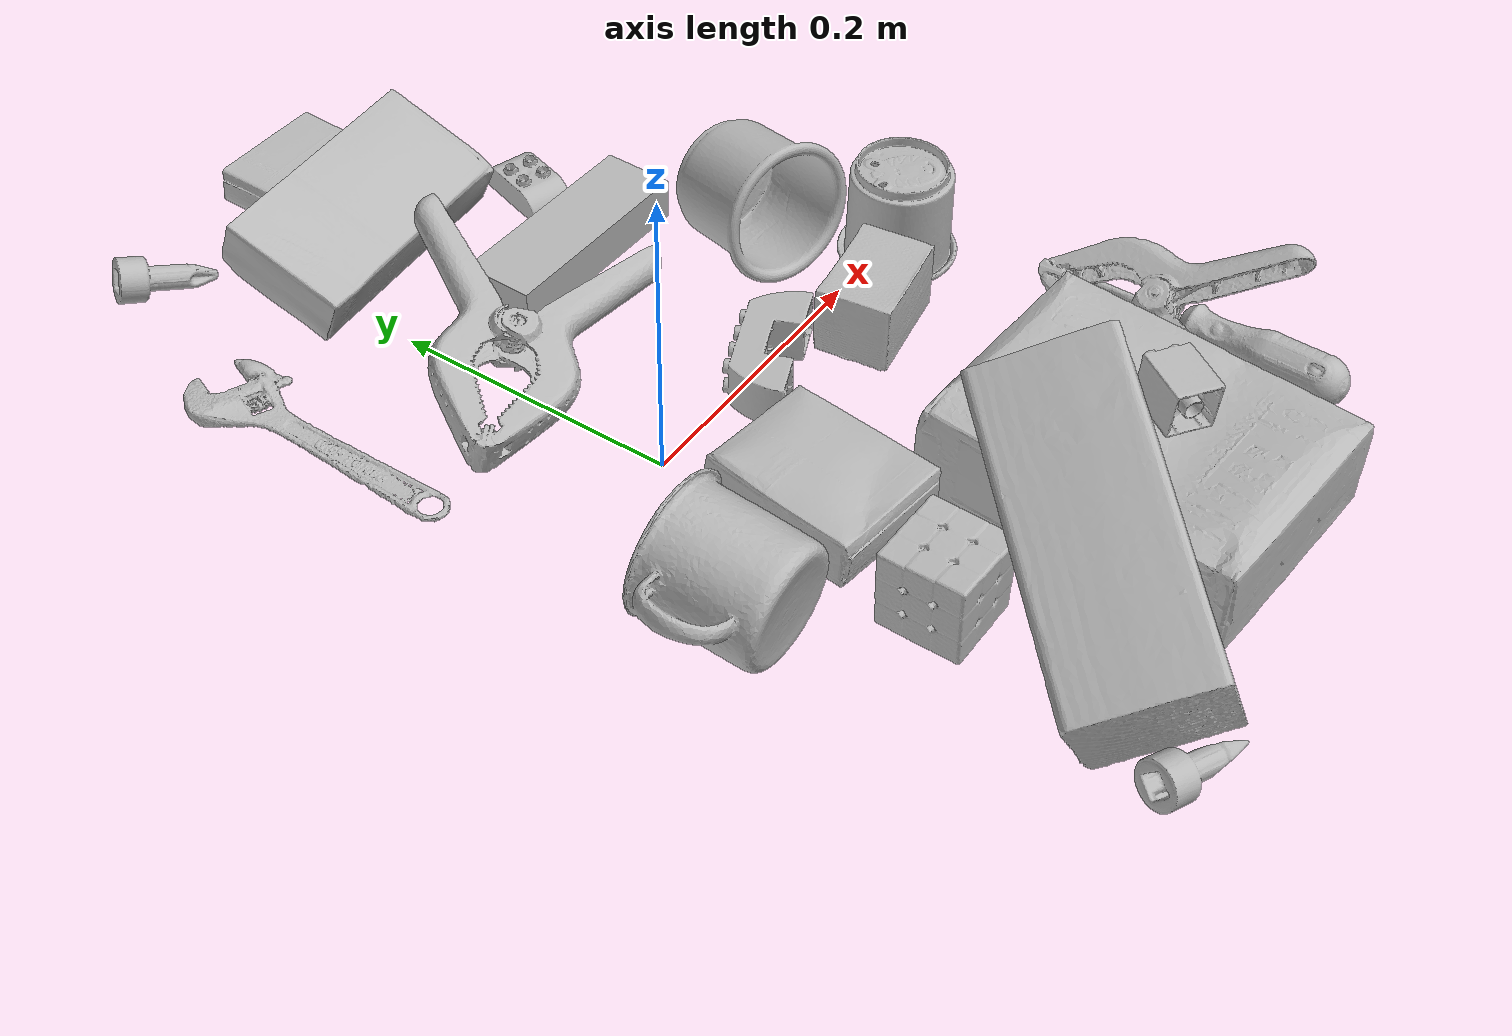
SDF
<sdf version="1.4">
  <world name="default">
    <light name="light1" type="point">
      <pose>0 0 1 0 0 0</pose>
      <diffuse>3 3 3 1</diffuse>
      <specular>3 3 3 1</specular>
    </light>
    <light name="light2" type="point">
      <pose>0 0.5 2 0 0 0</pose>
      <diffuse>1 1 1 1</diffuse>
      <specular>1 1 1 1</specular>
    </light>
    <light name="light3" type="point">
      <pose>0 0.5 2 0 0 0</pose>
      <diffuse>3 3 3 1</diffuse>
      <specular>3 3 3 1</specular>
    </light>
    <scene>
      <ambient>0.7 0.7 0.7</ambient>
    </scene>
    <model name="box21">
      <link name="link_box21">
        <collision name="default">
          <geometry>
            <mesh>
              <uri>model://cracker_box/collision_meshes/collision.obj</uri>
              <scale>1.0 1.0 1.0</scale>
            </mesh>
          </geometry>
          <surface>
            <friction>
              <ode>
                <mu>0.5</mu>
                <mu2>0.5</mu2>
              </ode>
            </friction>
          <contact>
        <ode>
            <max_vel>0</max_vel>
            <min_depth>0.0001</min_depth>
            <kp>1e8</kp>
        </ode>
    </contact></surface>
        </collision>
        <visual name="default">
          <geometry>
            <mesh>
              <uri>model://cracker_box/visual_meshes/visual.dae</uri>
              <scale>1.0 1.0 1.0</scale>
            </mesh>
          </geometry>
        </visual>
        <inertial>
          <mass>1.391977071762085</mass>
          <pose>0.0009464159375056624 0.0002543424488976598 -0.0017029533628374338 -0.000316207597302205 -0.011106489600460226 0.002546794768991959</pose>
          <inertia>
            <ixx>0.0035405685</ixx>
            <iyy>0.0058461735</iyy>
            <izz>0.008343027</izz>
            <ixy>0</ixy>
            <ixz>0</ixz>
            <iyz>0</iyz>
          </inertia>
        </inertial>
      </link>
      <pose>0.14034120738506317 -0.2436387836933136 0.0364818312227726 -0.011793521250132657 -0.007366216131034923 1.4858913787929289</pose>
    </model>
    <model name="box22">
      <link name="link_box22">
        <collision name="default">
          <geometry>
            <mesh>
              <uri>model://pudding_box/collision_meshes/collision.obj</uri>
              <scale>1.0 1.0 1.0</scale>
            </mesh>
          </geometry>
          <surface>
            <friction>
              <ode>
                <mu>0.5</mu>
                <mu2>0.5</mu2>
              </ode>
            </friction>
          <contact>
        <ode>
            <max_vel>0</max_vel>
            <min_depth>0.0001</min_depth>
            <kp>1e8</kp>
        </ode>
    </contact></surface>
        </collision>
        <visual name="default">
          <geometry>
            <mesh>
              <uri>model://pudding_box/visual_meshes/visual.dae</uri>
              <scale>1.0 1.0 1.0</scale>
            </mesh>
          </geometry>
        </visual>
        <inertial>
          <mass>0.30066633224487305</mass>
          <pose>0.0004894821904599667 0.0008067885646596551 -0.0005188827635720372 0.005213102250656644 -0.006603798267444238 0.020079828885202117</pose>
          <inertia>
            <ixx>0.0003398878</ixx>
            <iyy>0.00022867892</iyy>
            <izz>0.00050193316</izz>
            <ixy>0</ixy>
            <ixz>0</ixz>
            <iyz>0</iyz>
          </inertia>
        </inertial>
      </link>
      <pose>0.026828184723854065 -0.09631796926259995 0.018660496920347214 3.133983181108727 -0.026952226739148853 3.0120504779354387</pose>
    </model>
    <model name="box23">
      <link name="link_box23">
        <collision name="default">
          <geometry>
            <mesh>
              <uri>model://rubiks_cube/collision_meshes/collision.obj</uri>
              <scale>1.0 1.0 1.0</scale>
            </mesh>
          </geometry>
          <surface>
            <friction>
              <ode>
                <mu>0.5</mu>
                <mu2>0.5</mu2>
              </ode>
            </friction>
          <contact>
        <ode>
            <max_vel>0</max_vel>
            <min_depth>0.0001</min_depth>
            <kp>1e8</kp>
        </ode>
    </contact></surface>
        </collision>
        <visual name="default">
          <geometry>
            <mesh>
              <uri>model://rubiks_cube/visual_meshes/visual.dae</uri>
              <scale>1.0 1.0 1.0</scale>
            </mesh>
          </geometry>
        </visual>
        <inertial>
          <mass>0.26383036375045776</mass>
          <pose>2.6721041649580002e-05 5.256966323941015e-05 -7.264316082000732e-06 -0.054671492146459166 -0.0981403456898064 -0.03445706250673431</pose>
          <inertia>
            <ixx>0.000145784</ixx>
            <iyy>0.00014510413</iyy>
            <izz>0.00014699204</izz>
            <ixy>0</ixy>
            <ixz>0</ixz>
            <iyz>0</iyz>
          </inertia>
        </inertial>
      </link>
      <pose>-0.006485923659056425 -0.1986396759748459 0.029273271560668945 1.5698337380052259 -0.02165945288178244 -1.5951597471584493</pose>
    </model>
    <model name="cup1">
      <link name="link_cup1">
        <collision name="default">
          <geometry>
            <mesh>
              <uri>model://i_cups/collision_meshes/collision.obj</uri>
              <scale>1.0 1.0 1.0</scale>
            </mesh>
          </geometry>
          <surface>
            <friction>
              <ode>
                <mu>0.5</mu>
                <mu2>0.5</mu2>
              </ode>
            </friction>
          <contact>
        <ode>
            <max_vel>0</max_vel>
            <min_depth>0.0001</min_depth>
            <kp>1e8</kp>
        </ode>
    </contact></surface>
        </collision>
        <visual name="default">
          <geometry>
            <mesh>
              <uri>model://i_cups/visual_meshes/visual.dae</uri>
              <scale>1.0 1.0 1.0</scale>
            </mesh>
          </geometry>
        </visual>
        <inertial>
          <mass>0.07817669957876205</mass>
          <pose>0.00011240140884183347 0.00016797371790744364 -0.0008579030982218683 -0.02898336998566683 -0.039872909189422004 -0.34590568894983</pose>
          <inertia>
            <ixx>0.000108236774</ixx>
            <iyy>0.000109190434</iyy>
            <izz>0.00012097212</izz>
            <ixy>0</ixy>
            <ixz>0</ixz>
            <iyz>0</iyz>
          </inertia>
        </inertial>
      </link>
      <pose>0.2071106880903244 0.07262038439512253 0.04483126848936081 1.435703170376369 -0.3500620974660565 -0.26062857931460975</pose>
    </model>
    <model name="cup2">
      <link name="link_cup2">
        <collision name="default">
          <geometry>
            <mesh>
              <uri>model://f_cups/collision_meshes/collision.obj</uri>
              <scale>1.0 1.0 1.0</scale>
            </mesh>
          </geometry>
          <surface>
            <friction>
              <ode>
                <mu>0.5</mu>
                <mu2>0.5</mu2>
              </ode>
            </friction>
          <contact>
        <ode>
            <max_vel>0</max_vel>
            <min_depth>0.0001</min_depth>
            <kp>1e8</kp>
        </ode>
    </contact></surface>
        </collision>
        <visual name="default">
          <geometry>
            <mesh>
              <uri>model://f_cups/visual_meshes/visual.dae</uri>
              <scale>1.0 1.0 1.0</scale>
            </mesh>
          </geometry>
        </visual>
        <inertial>
          <mass>0.06179655343294144</mass>
          <pose>-0.003171469084918499 -0.0006240077782422304 -0.0036555363330990076 0.786228783809594 -0.26079147583364887 -0.18237327348602217</pose>
          <inertia>
            <ixx>5.8090412e-05</ixx>
            <iyy>6.0937502e-05</iyy>
            <izz>6.3437656e-05</izz>
            <ixy>0</ixy>
            <ixz>0</ixz>
            <iyz>0</iyz>
          </inertia>
        </inertial>
      </link>
      <pose>0.2583334743976593 -0.008993173018097878 0.036304011940956116 -3.141592626985685 1.634429031814616e-08 1.4340114884834383</pose>
    </model>
    <model name="box11">
      <link name="link_box11">
        <collision name="default">
          <geometry>
            <mesh>
              <uri>model://jenga/collision_meshes/collision.obj</uri>
              <scale>1.0 1.0 1.0</scale>
            </mesh>
          </geometry>
          <surface>
            <friction>
              <ode>
                <mu>0.5</mu>
                <mu2>0.5</mu2>
              </ode>
            </friction>
          <contact>
        <ode>
            <max_vel>0</max_vel>
            <min_depth>0.0001</min_depth>
            <kp>1e8</kp>
        </ode>
    </contact></surface>
        </collision>
        <visual name="default">
          <geometry>
            <mesh>
              <uri>model://jenga/visual_meshes/visual.dae</uri>
              <scale>1.0 1.0 1.0</scale>
            </mesh>
          </geometry>
        </visual>
        <inertial>
          <mass>0.2841220796108246</mass>
          <pose>-2.5028555228345795e-07 -0.00010250010382151231 -4.0923401684267446e-05 0.0 -7.34215461761844e-07 0.0</pose>
          <inertia>
            <ixx>7.8623474e-05</ixx>
            <iyy>0.00053275056</iyy>
            <izz>0.0005687565</izz>
            <ixy>0</ixy>
            <ixz>0</ixz>
            <iyz>0</iyz>
          </inertia>
        </inertial>
      </link>
      <pose>0.126708984375 0.16684876382350922 0.015000002458691597 7.706278061374901e-09 1.2173474346702982e-09 -0.025096376319169722</pose>
    </model>
    <model name="box12">
      <link name="link_box12">
        <collision name="default">
          <geometry>
            <mesh>
              <uri>model://wood_block/collision_meshes/collision.obj</uri>
              <scale>1.0 1.0 1.0</scale>
            </mesh>
          </geometry>
          <surface>
            <friction>
              <ode>
                <mu>0.5</mu>
                <mu2>0.5</mu2>
              </ode>
            </friction>
          <contact>
        <ode>
            <max_vel>0</max_vel>
            <min_depth>0.0001</min_depth>
            <kp>1e8</kp>
        </ode>
    </contact></surface>
        </collision>
        <visual name="default">
          <geometry>
            <mesh>
              <uri>model://wood_block/visual_meshes/visual.dae</uri>
              <scale>1.0 1.0 1.0</scale>
            </mesh>
          </geometry>
        </visual>
        <inertial>
          <mass>1.792885661125183</mass>
          <pose>-5.813315510749817e-06 -0.0005708095268346369 0.0002640858292579651 -0.0522099864925601 -0.005192695938411627 -0.006861379223067069</pose>
          <inertia>
            <ixx>0.0023991528</ixx>
            <iyy>0.007578924</iyy>
            <izz>0.007550574</izz>
            <ixy>0</ixy>
            <ixz>0</ixz>
            <iyz>0</iyz>
          </inertia>
        </inertial>
      </link>
      <pose>0.01169726625084877 -0.2789517939090729 0.08994641155004501 0.4044817224354778 0.36605166264968675 -2.3196509560805763</pose>
    </model>
    <model name="box13">
      <link name="link_box13">
        <collision name="default">
          <geometry>
            <mesh>
              <uri>model://sugar_box/collision_meshes/collision.obj</uri>
              <scale>1.0 1.0 1.0</scale>
            </mesh>
          </geometry>
          <surface>
            <friction>
              <ode>
                <mu>0.5</mu>
                <mu2>0.5</mu2>
              </ode>
            </friction>
          <contact>
        <ode>
            <max_vel>0</max_vel>
            <min_depth>0.0001</min_depth>
            <kp>1e8</kp>
        </ode>
    </contact></surface>
        </collision>
        <visual name="default">
          <geometry>
            <mesh>
              <uri>model://sugar_box/visual_meshes/visual.dae</uri>
              <scale>1.0 1.0 1.0</scale>
            </mesh>
          </geometry>
        </visual>
        <inertial>
          <mass>0.8825364708900452</mass>
          <pose>0.0010343727190047503 3.8491099985549226e-05 -0.00036364805418998003 -0.0004046260965456432 0.0010506635219437153 0.002615379021860657</pose>
          <inertia>
            <ixx>0.0007353271</ixx>
            <iyy>0.0023767278</iyy>
            <izz>0.002845227</izz>
            <ixy>0</ixy>
            <ixz>0</ixz>
            <iyz>0</iyz>
          </inertia>
        </inertial>
      </link>
      <pose>0.05195610597729683 0.28494030237197876 0.03397446125745773 -2.769975623248677 -0.007556204959760553 0.073483113335138</pose>
    </model>
    <model name="box14">
      <link name="link_box14">
        <collision name="default">
          <geometry>
            <mesh>
              <uri>model://gelatin_box/collision_meshes/collision.obj</uri>
              <scale>1.0 1.0 1.0</scale>
            </mesh>
          </geometry>
          <surface>
            <friction>
              <ode>
                <mu>0.5</mu>
                <mu2>0.5</mu2>
              </ode>
            </friction>
          <contact>
        <ode>
            <max_vel>0</max_vel>
            <min_depth>0.0001</min_depth>
            <kp>1e8</kp>
        </ode>
    </contact></surface>
        </collision>
        <visual name="default">
          <geometry>
            <mesh>
              <uri>model://gelatin_box/visual_meshes/visual.dae</uri>
              <scale>1.0 1.0 1.0</scale>
            </mesh>
          </geometry>
        </visual>
        <inertial>
          <mass>0.13771659135818481</mass>
          <pose>0.0004319618456065655 0.00011156871914863586 -0.0003640321083366871 -0.0010503722043797578 -0.004755819155943452 0.016440555746729004</pose>
          <inertia>
            <ixx>9.721668e-05</ixx>
            <iyy>6.944137e-05</iyy>
            <izz>0.00014798543</izz>
            <ixy>0</ixy>
            <ixz>0</ixz>
            <iyz>0</iyz>
          </inertia>
        </inertial>
      </link>
      <pose>0.07855330407619476 0.3629269003868103 0.01458378043025732 -3.1256210289675965 -0.025471293193482274 1.5789663618837824</pose>
    </model>
    <model name="cup15">
      <link name="link_cup15">
        <collision name="default">
          <geometry>
            <mesh>
              <uri>model://mug/collision_meshes/collision.obj</uri>
              <scale>1.0 1.0 1.0</scale>
            </mesh>
          </geometry>
          <surface>
            <friction>
              <ode>
                <mu>0.5</mu>
                <mu2>0.5</mu2>
              </ode>
            </friction>
          <contact>
        <ode>
            <max_vel>0</max_vel>
            <min_depth>0.0001</min_depth>
            <kp>1e8</kp>
        </ode>
    </contact></surface>
        </collision>
        <visual name="default">
          <geometry>
            <mesh>
              <uri>model://mug/visual_meshes/visual.dae</uri>
              <scale>1.0 1.0 1.0</scale>
            </mesh>
          </geometry>
        </visual>
        <inertial>
          <mass>0.09286905825138092</mass>
          <pose>0.009571668691933155 0.0008143252343870699 -0.010947328992187977 -0.12983168029791675 0.08737751579099198 0.05507277032354666</pose>
          <inertia>
            <ixx>9.2248694e-05</ixx>
            <iyy>0.00010303637</iyy>
            <izz>0.00011916295</izz>
            <ixy>0</ixy>
            <ixz>0</ixz>
            <iyz>0</iyz>
          </inertia>
        </inertial>
      </link>
      <pose>-0.09429268538951874 -0.10735005140304565 0.04777876287698746 -1.485549835437149 0.29995221007634737 0.02176627213822141</pose>
    </model>
    <model name="toy1">
      <link name="link_toy1">
        <collision name="default">
          <geometry>
            <mesh>
              <uri>model://e_toy_airplane/collision_meshes/collision.obj</uri>
              <scale>1.0 1.0 1.0</scale>
            </mesh>
          </geometry>
          <surface>
            <friction>
              <ode>
                <mu>0.5</mu>
                <mu2>0.5</mu2>
              </ode>
            </friction>
          <contact>
        <ode>
            <max_vel>0</max_vel>
            <min_depth>0.0001</min_depth>
            <kp>1e8</kp>
        </ode>
    </contact></surface>
        </collision>
        <visual name="default">
          <geometry>
            <mesh>
              <uri>model://e_toy_airplane/visual_meshes/visual.dae</uri>
              <scale>1.0 1.0 1.0</scale>
            </mesh>
          </geometry>
        </visual>
        <inertial>
          <mass>0.023911256343126297</mass>
          <pose>0.00011740469199139625 -2.2482965505332686e-05 -0.011187205091118813 0.005518515901869279 0.009228280443904262 0.15041685177791278</pose>
          <inertia>
            <ixx>7.297989e-06</ixx>
            <iyy>7.223337e-06</iyy>
            <izz>2.1933329e-06</izz>
            <ixy>0</ixy>
            <ixz>0</ixz>
            <iyz>0</iyz>
          </inertia>
        </inertial>
      </link>
      <pose>-0.029300816357135773 -0.36718547344207764 0.012304610572755337 -1.7500138359845143 0.26981031033817776 -1.9923547880090131</pose>
    </model>
    <model name="toy2">
      <link name="link_toy2">
        <collision name="default">
          <geometry>
            <mesh>
              <uri>model://e_lego_duplo/collision_meshes/collision.obj</uri>
              <scale>1.0 1.0 1.0</scale>
            </mesh>
          </geometry>
          <surface>
            <friction>
              <ode>
                <mu>0.5</mu>
                <mu2>0.5</mu2>
              </ode>
            </friction>
          <contact>
        <ode>
            <max_vel>0</max_vel>
            <min_depth>0.0001</min_depth>
            <kp>1e8</kp>
        </ode>
    </contact></surface>
        </collision>
        <visual name="default">
          <geometry>
            <mesh>
              <uri>model://e_lego_duplo/visual_meshes/visual.dae</uri>
              <scale>1.0 1.0 1.0</scale>
            </mesh>
          </geometry>
        </visual>
        <inertial>
          <mass>0.11075761169195175</mass>
          <pose>0.00032560486579313874 0.0002348541165702045 0.0019521445501595736 -0.02256776115193108 -6.825012723321977e-05 -0.007625153470106003</pose>
          <inertia>
            <ixx>2.3096625e-05</ixx>
            <iyy>9.479449e-05</iyy>
            <izz>9.231077e-05</izz>
            <ixy>0</ixy>
            <ixz>0</ixz>
            <iyz>0</iyz>
          </inertia>
        </inertial>
      </link>
      <pose>0.10429646074771881 -0.004792196210473776 0.016517803072929382 -1.5715867878866199 0.005902861969660307 0.3805949857705945</pose>
    </model>
    <model name="toy3">
      <link name="link_toy3">
        <collision name="default">
          <geometry>
            <mesh>
              <uri>model://foam_brick/collision_meshes/collision.obj</uri>
              <scale>1.0 1.0 1.0</scale>
            </mesh>
          </geometry>
          <surface>
            <friction>
              <ode>
                <mu>0.5</mu>
                <mu2>0.5</mu2>
              </ode>
            </friction>
          <contact>
        <ode>
            <max_vel>0</max_vel>
            <min_depth>0.0001</min_depth>
            <kp>1e8</kp>
        </ode>
    </contact></surface>
        </collision>
        <visual name="default">
          <geometry>
            <mesh>
              <uri>model://foam_brick/visual_meshes/visual.dae</uri>
              <scale>1.0 1.0 1.0</scale>
            </mesh>
          </geometry>
        </visual>
        <inertial>
          <mass>0.18736568093299866</mass>
          <pose>-0.0002522472059354186 0.0003458441933616996 -0.0002532101352699101 -0.2940186982087205 0.017274432871393446 -0.000744985669109422</pose>
          <inertia>
            <ixx>8.184482e-05</ixx>
            <iyy>0.00013066948</iyy>
            <izz>0.00013233014</izz>
            <ixy>0</ixy>
            <ixz>0</ixz>
            <iyz>0</iyz>
          </inertia>
        </inertial>
      </link>
      <pose>0.1815592497587204 -0.037086132913827896 0.025496836751699448 3.1325085936811106 0.00660723266755529 -2.9903585749652652</pose>
    </model>
    <model name="toy4">
      <link name="link_toy4">
        <collision name="default">
          <geometry>
            <mesh>
              <uri>model://b_lego_duplo/collision_meshes/collision.obj</uri>
              <scale>1.0 1.0 1.0</scale>
            </mesh>
          </geometry>
          <surface>
            <friction>
              <ode>
                <mu>0.5</mu>
                <mu2>0.5</mu2>
              </ode>
            </friction>
          <contact>
        <ode>
            <max_vel>0</max_vel>
            <min_depth>0.0001</min_depth>
            <kp>1e8</kp>
        </ode>
    </contact></surface>
        </collision>
        <visual name="default">
          <geometry>
            <mesh>
              <uri>model://b_lego_duplo/visual_meshes/visual.dae</uri>
              <scale>1.0 1.0 1.0</scale>
            </mesh>
          </geometry>
        </visual>
        <inertial>
          <mass>0.025353357195854187</mass>
          <pose>-0.00011053043272113428 -9.152237907983363e-06 0.001929429010488093 -0.03749469050897604 -0.02635423063131295 0.4518929125976256</pose>
          <inertia>
            <ixx>5.188755e-06</ixx>
            <iyy>5.223636e-06</iyy>
            <izz>4.623011e-06</izz>
            <ixy>0</ixy>
            <ixz>0</ixz>
            <iyz>0</iyz>
          </inertia>
        </inertial>
      </link>
      <pose>0.15326155722141266 -0.25394514203071594 0.0825430303812027 1.5272162298567142 -0.05659436350213457 2.5702117308839814</pose>
    </model>
    <model name="toy5">
      <link name="link_toy5">
        <collision name="default">
          <geometry>
            <mesh>
              <uri>model://d_toy_airplane/collision_meshes/collision.obj</uri>
              <scale>1.0 1.0 1.0</scale>
            </mesh>
          </geometry>
          <surface>
            <friction>
              <ode>
                <mu>0.5</mu>
                <mu2>0.5</mu2>
              </ode>
            </friction>
          <contact>
        <ode>
            <max_vel>0</max_vel>
            <min_depth>0.0001</min_depth>
            <kp>1e8</kp>
        </ode>
    </contact></surface>
        </collision>
        <visual name="default">
          <geometry>
            <mesh>
              <uri>model://d_toy_airplane/visual_meshes/visual.dae</uri>
              <scale>1.0 1.0 1.0</scale>
            </mesh>
          </geometry>
        </visual>
        <inertial>
          <mass>0.012228579260408878</mass>
          <pose>9.410289931111038e-05 -5.8093195548281074e-05 -0.011728097684681416 0.00026677116185868234 0.004678984415060646 0.5194210089241819</pose>
          <inertia>
            <ixx>3.6658907e-06</ixx>
            <iyy>3.6686554e-06</iyy>
            <izz>1.1067563e-06</izz>
            <ixy>0</ixy>
            <ixz>0</ixz>
            <iyz>0</iyz>
          </inertia>
        </inertial>
      </link>
      <pose>-0.05257589370012283 0.36462193727493286 0.011039390228688717 2.4247220530796008 -1.260182785442371 0.17526903030022414</pose>
    </model>
    <model name="toy6">
      <link name="link_toy6">
        <collision name="default">
          <geometry>
            <mesh>
              <uri>model://a_lego_duplo/collision_meshes/collision.obj</uri>
              <scale>1.0 1.0 1.0</scale>
            </mesh>
          </geometry>
          <surface>
            <friction>
              <ode>
                <mu>0.5</mu>
                <mu2>0.5</mu2>
              </ode>
            </friction>
          <contact>
        <ode>
            <max_vel>0</max_vel>
            <min_depth>0.0001</min_depth>
            <kp>1e8</kp>
        </ode>
    </contact></surface>
        </collision>
        <visual name="default">
          <geometry>
            <mesh>
              <uri>model://a_lego_duplo/visual_meshes/visual.dae</uri>
              <scale>1.0 1.0 1.0</scale>
            </mesh>
          </geometry>
        </visual>
        <inertial>
          <mass>0.012199957855045795</mass>
          <pose>-0.00011337617615936324 0.00018517585704103112 0.0003692606114782393 -0.014116995063493705 -0.0001256559143483996 6.140869386576653e-05</pose>
          <inertia>
            <ixx>1.564132e-06</ixx>
            <iyy>3.5039989e-06</iyy>
            <izz>4.340482e-06</izz>
            <ixy>0</ixy>
            <ixz>0</ixz>
            <iyz>0</iyz>
          </inertia>
        </inertial>
      </link>
      <pose>0.16406232118606567 0.23336544632911682 0.012111997231841087 -7.000552590264832e-08 -4.96295049725016e-08 1.272304562126543</pose>
    </model>
    <model name="hardware1">
      <link name="link_hardware1">
        <collision name="default">
          <geometry>
            <mesh>
              <uri>model://phillips_screwdriver/collision_meshes/collision.obj</uri>
              <scale>1.0 1.0 1.0</scale>
            </mesh>
          </geometry>
          <surface>
            <friction>
              <ode>
                <mu>0.5</mu>
                <mu2>0.5</mu2>
              </ode>
            </friction>
          <contact>
        <ode>
            <max_vel>0</max_vel>
            <min_depth>0.0001</min_depth>
            <kp>1e8</kp>
        </ode>
    </contact></surface>
        </collision>
        <visual name="default">
          <geometry>
            <mesh>
              <uri>model://phillips_screwdriver/visual_meshes/visual.dae</uri>
              <scale>1.0 1.0 1.0</scale>
            </mesh>
          </geometry>
        </visual>
        <inertial>
          <mass>0.06495495140552521</mass>
          <pose>-0.04777183011174202 0.0010362302418798208 -0.00045555501128546894 -0.1571888451297522 0.005850998841919991 -0.0021567342335393844</pose>
          <inertia>
            <ixx>7.63154e-06</ixx>
            <iyy>9.568614e-05</iyy>
            <izz>9.576745e-05</izz>
            <ixy>0</ixy>
            <ixz>0</ixz>
            <iyz>0</iyz>
          </inertia>
        </inertial>
      </link>
      <pose>0.2849712371826172 -0.21481791138648987 0.014949054457247257 -2.2624327337534273 0.05162690067750725 1.4959891095763629</pose>
    </model>
    <model name="hardware2">
      <link name="link_hardware2">
        <collision name="default">
          <geometry>
            <mesh>
              <uri>model://extra_large_clamp/collision_meshes/collision.obj</uri>
              <scale>1.0 1.0 1.0</scale>
            </mesh>
          </geometry>
          <surface>
            <friction>
              <ode>
                <mu>0.5</mu>
                <mu2>0.5</mu2>
              </ode>
            </friction>
          <contact>
        <ode>
            <max_vel>0</max_vel>
            <min_depth>0.0001</min_depth>
            <kp>1e8</kp>
        </ode>
    </contact></surface>
        </collision>
        <visual name="default">
          <geometry>
            <mesh>
              <uri>model://extra_large_clamp/visual_meshes/visual.dae</uri>
              <scale>1.0 1.0 1.0</scale>
            </mesh>
          </geometry>
        </visual>
        <inertial>
          <mass>0.19384004175662994</mass>
          <pose>0.003232018556445837 -7.61538467486389e-05 0.00031721554114483297 0.013786997874205318 -0.000506684650300538 -0.0008936209831217155</pose>
          <inertia>
            <ixx>0.00029460518</ixx>
            <iyy>0.00050721905</iyy>
            <izz>0.0007749263</izz>
            <ixy>0</ixy>
            <ixz>0</ixz>
            <iyz>0</iyz>
          </inertia>
        </inertial>
      </link>
      <pose>0.019211100414395332 0.13002869486808777 0.02484852448105812 2.922793613564445 0.09951522182641177 -2.656316824451103</pose>
    </model>
    <model name="hardware3">
      <link name="link_hardware3">
        <collision name="default">
          <geometry>
            <mesh>
              <uri>model://large_clamp/collision_meshes/collision.obj</uri>
              <scale>1.0 1.0 1.0</scale>
            </mesh>
          </geometry>
          <surface>
            <friction>
              <ode>
                <mu>0.5</mu>
                <mu2>0.5</mu2>
              </ode>
            </friction>
          <contact>
        <ode>
            <max_vel>0</max_vel>
            <min_depth>0.0001</min_depth>
            <kp>1e8</kp>
        </ode>
    </contact></surface>
        </collision>
        <visual name="default">
          <geometry>
            <mesh>
              <uri>model://large_clamp/visual_meshes/visual.dae</uri>
              <scale>1.0 1.0 1.0</scale>
            </mesh>
          </geometry>
        </visual>
        <inertial>
          <mass>0.09168914705514908</mass>
          <pose>0.006369357462972403 0.0003585686208680272 -0.0001839803735492751 -0.0021330784539622108 0.00967158945845961 0.026633182273159455</pose>
          <inertia>
            <ixx>8.0894904e-05</ixx>
            <iyy>0.00015362375</iyy>
            <izz>0.00022223631</izz>
            <ixy>0</ixy>
            <ixz>0</ixz>
            <iyz>0</iyz>
          </inertia>
        </inertial>
      </link>
      <pose>0.27399876713752747 -0.19337084889411926 0.030727893114089966 2.6748259183497205 0.1506891099458192 1.6384846073209485</pose>
    </model>
    <model name="hardware4">
      <link name="link_hardware4">
        <collision name="default">
          <geometry>
            <mesh>
              <uri>model://adjustable_wrench/collision_meshes/collision.obj</uri>
              <scale>1.0 1.0 1.0</scale>
            </mesh>
          </geometry>
          <surface>
            <friction>
              <ode>
                <mu>0.5</mu>
                <mu2>0.5</mu2>
              </ode>
            </friction>
          <contact>
        <ode>
            <max_vel>0</max_vel>
            <min_depth>0.0001</min_depth>
            <kp>1e8</kp>
        </ode>
    </contact></surface>
        </collision>
        <visual name="default">
          <geometry>
            <mesh>
              <uri>model://adjustable_wrench/visual_meshes/visual.dae</uri>
              <scale>1.0 1.0 1.0</scale>
            </mesh>
          </geometry>
        </visual>
        <inertial>
          <mass>0.03454793244600296</mass>
          <pose>0.03740980476140976 -0.0028968879487365484 -0.001114922808483243 -0.01447336202596381 0.006656025927011416 -0.010954184309206349</pose>
          <inertia>
            <ixx>7.0707333e-06</ixx>
            <iyy>8.275469e-05</iyy>
            <izz>8.944984e-05</izz>
            <ixy>0</ixy>
            <ixz>0</ixz>
            <iyz>0</iyz>
          </inertia>
        </inertial>
      </link>
      <pose>-0.10502859950065613 0.18455952405929565 0.0046288250014185905 3.098252420796557 -0.016039484449640297 1.576027619883285</pose>
    </model>
  <physics type="ode">
      <max_contacts>50</max_contacts>
      <ode>
        <solver>
          <type>quick</type>
          <iters>75</iters>
        </solver>
        <constraints>
          <contact_max_correcting_vel>0</contact_max_correcting_vel>
          <contact_surface_layer>0</contact_surface_layer>
        </constraints>
      </ode>
    </physics></world>
</sdf>
